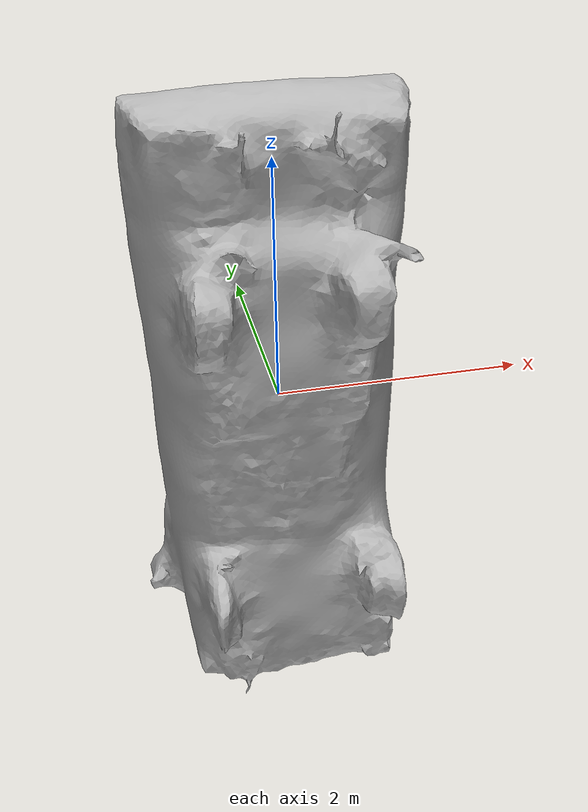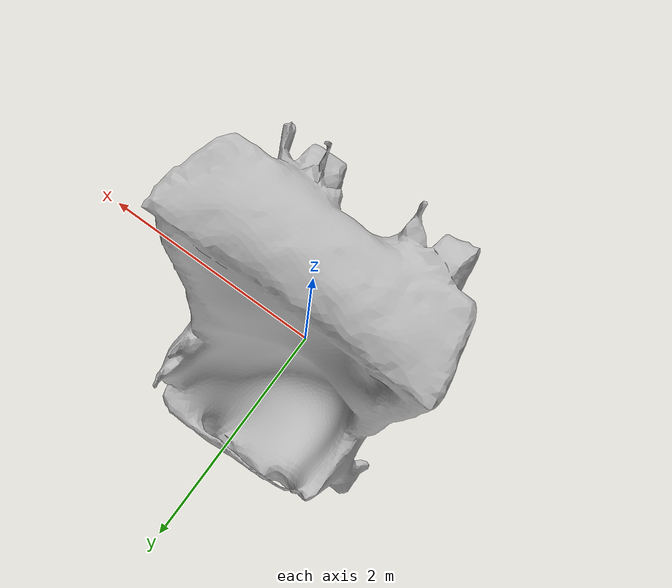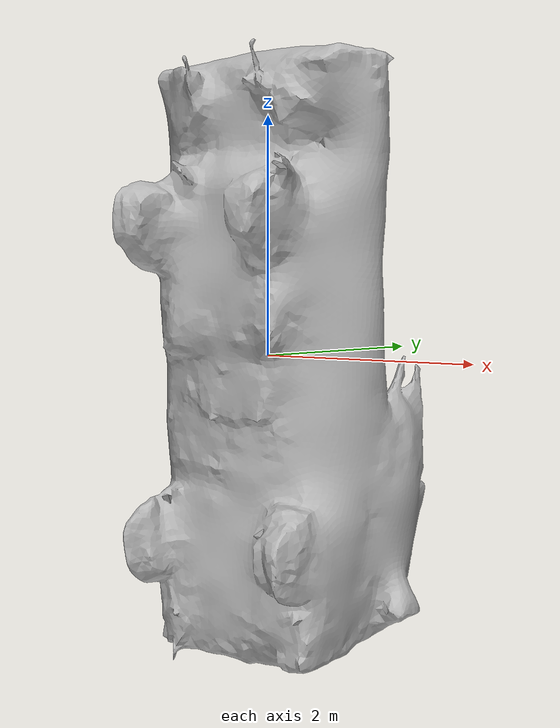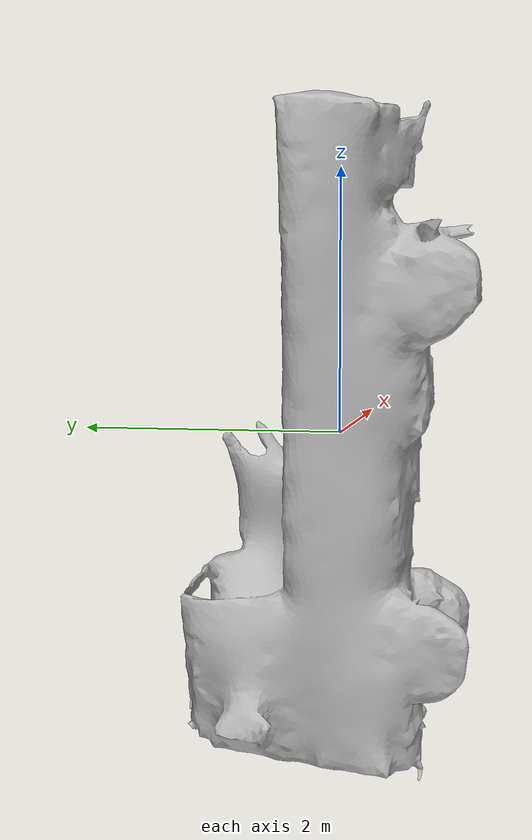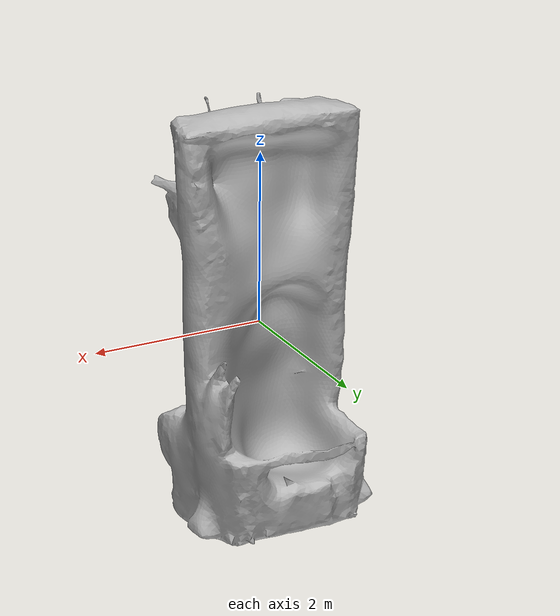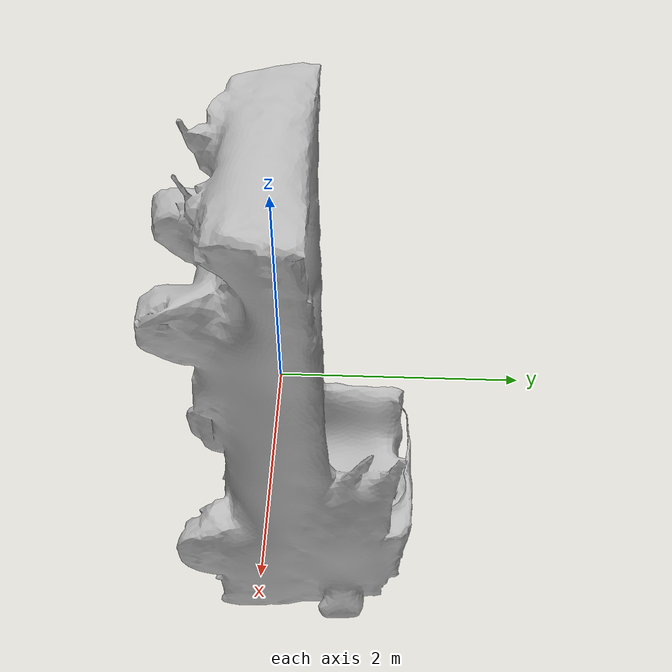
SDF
<?xml version="1.0" ?>
<sdf version="1.6">
  <model name="kare-emptylorry">
    <static>true</static>
    <link name="link">
      <collision name="collision">
        <geometry>
          <mesh>
            <scale>5 5 5</scale>
            <uri>model://kare-emptylorry/meshes/kare-emptylorry.obj</uri>
          </mesh>
        </geometry>
      </collision>
      <visual name="visual">
        <geometry>
          <mesh>
            <scale>5 5 5</scale>
            <uri>model://kare-emptylorry/meshes/kare-emptylorry.obj</uri>
          </mesh>
        </geometry>
      </visual>
    </link>
  </model>
</sdf>
